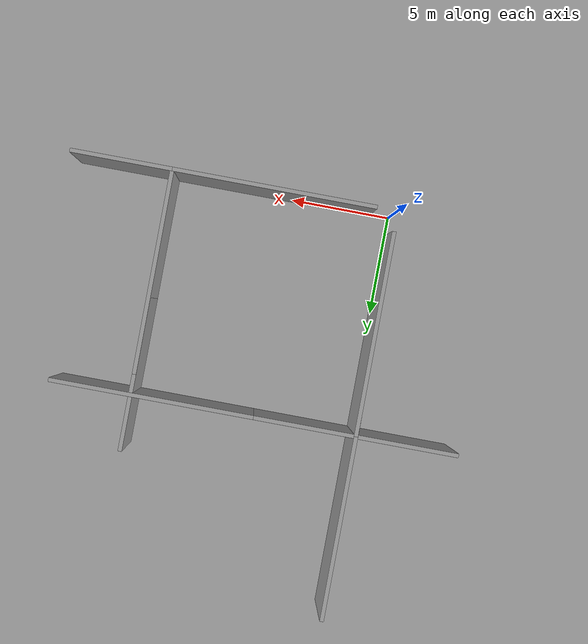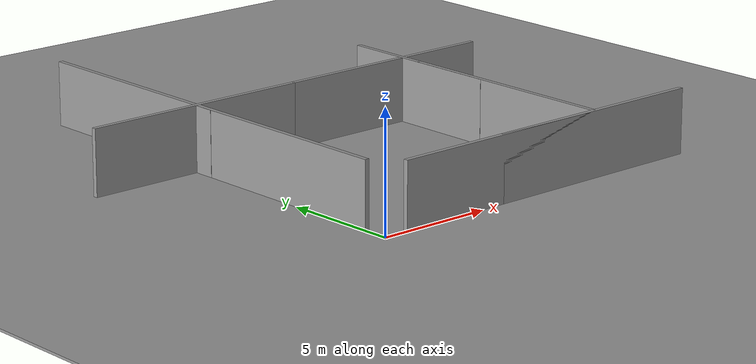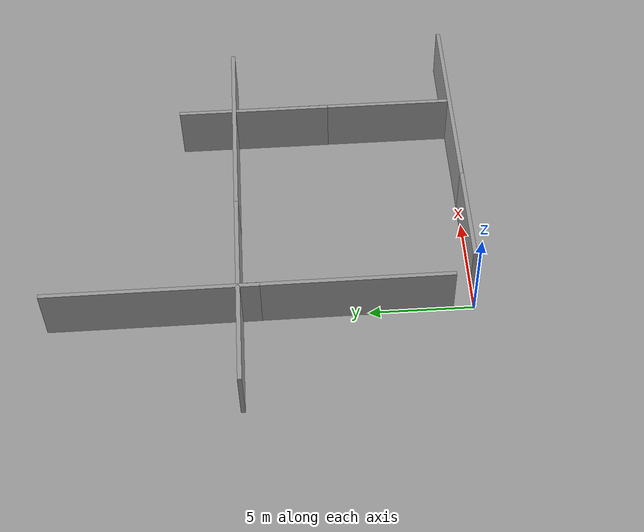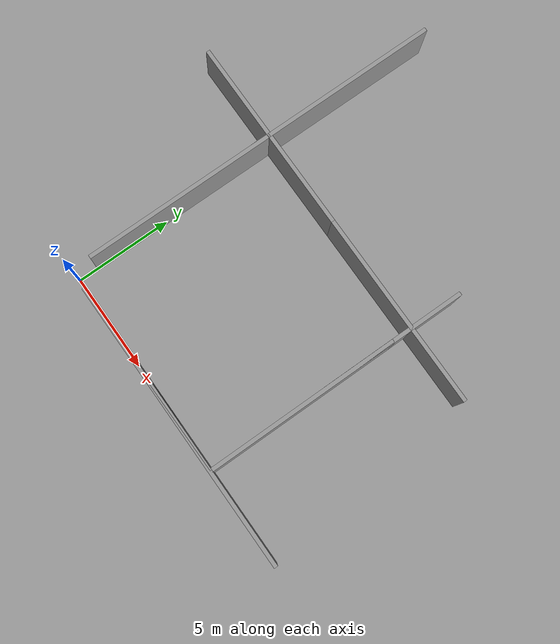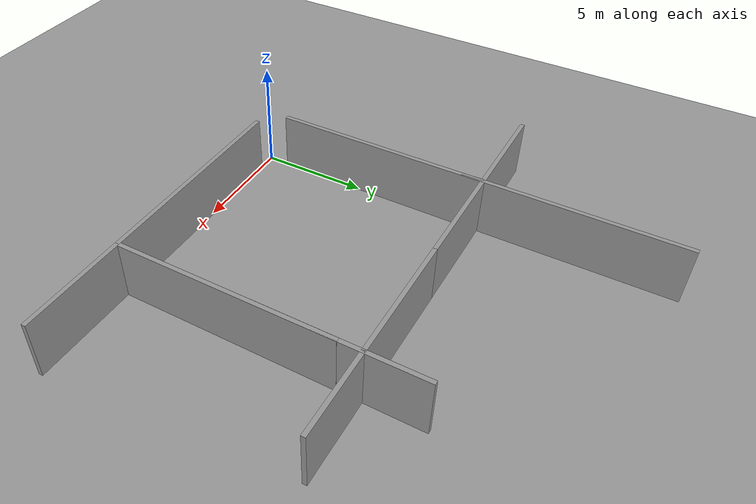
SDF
<sdf version="1.7">
 <world name="default">
  <plugin name="ros_interface_plugin" filename="librotors_gazebo_ros_interface_plugin.so"/>
  <light name="sun" type="directional">
   <pose>0 0 10 0 -0 0</pose>
   <diffuse>0.8 0.8 0.8 1</diffuse>
   <specular>0.2 0.2 0.2 1</specular>
   <attenuation>
    <range>1000</range>
    <constant>0.9</constant>
    <linear>0.01</linear>
    <quadratic>0.001</quadratic>
   </attenuation>
   <direction>-0.5 0.1 -0.9</direction>
   <spot><inner_angle>0</inner_angle><outer_angle>0</outer_angle><falloff>0</falloff></spot>
  </light>
  <model name="ground_plane">
   <static>1</static>
   <link name="link">
    <collision name="collision">
     <geometry><plane><normal>0 0 1</normal><size>100 100</size></plane></geometry>
     <surface><friction><ode><mu>100</mu><mu2>50</mu2></ode></friction></surface>
    </collision>
    <visual name="visual">
     <cast_shadows>0</cast_shadows>
     <geometry><plane><normal>0 0 1</normal><size>100 100</size></plane></geometry>
     <material>
      <script><uri>file://media/materials/scripts/gazebo.material</uri><name>Gazebo/Grey</name></script>
     </material>
    </visual>
   </link>
  </model>
  <gravity>0 0 -9.8</gravity>
  <magnetic_field>6e-06 2.3e-05 -4.2e-05</magnetic_field>
  <atmosphere type="adiabatic"/>
  <physics name="default_physics" default="0" type="ode">
   <max_step_size>0.01</max_step_size>
   <real_time_factor>1</real_time_factor>
   <real_time_update_rate>100</real_time_update_rate>
  </physics>
  <scene><ambient>0.4 0.4 0.4 1</ambient><background>0.7 0.7 0.7 1</background><shadows>1</shadows></scene>
  <audio><device>default</device></audio>
  <spherical_coordinates>
   <surface_model>EARTH_WGS84</surface_model>
   <latitude_deg>0</latitude_deg>
   <longitude_deg>0</longitude_deg>
   <elevation>0</elevation>
   <heading_deg>0</heading_deg>
  </spherical_coordinates>
  <model name="grey_wall_10">
   <link name="link">
    <pose>0 0 1.4 0 -0 0</pose>
    <inertial>
     <mass>1</mass>
     <inertia><ixx>1</ixx><ixy>0</ixy><ixz>0</ixz><iyy>1</iyy><iyz>0</iyz><izz>1</izz></inertia>
    </inertial>
    <visual name="visual">
     <cast_shadows>0</cast_shadows>
     <geometry><box><size>10 0.2 2.8</size></box></geometry>
     <material>
      <script>
       <uri>model://grey_wall/materials/scripts</uri>
       <uri>model://grey_wall/materials/textures</uri>
       <name>vrc/grey_wall</name>
      </script>
      <shader type="vertex"><normal_map>__default__</normal_map></shader>
      <ambient>1 1 1 1</ambient>
      <diffuse>1 1 1 1</diffuse>
      <specular>0 0 0 1</specular>
      <emissive>0 0 0 1</emissive>
     </material>
    </visual>
    <collision name="collision">
     <geometry><box><size>10 0.2 2.8</size></box></geometry>
     <surface>
      <friction>
       <ode><mu>1</mu><mu2>1</mu2><fdir1>0 0 0</fdir1><slip1>0</slip1><slip2>0</slip2></ode>
       <torsional>
        <coefficient>1</coefficient>
        <patch_radius>0</patch_radius>
        <surface_radius>0</surface_radius>
        <use_patch_radius>1</use_patch_radius>
        <ode><slip>0</slip></ode>
       </torsional>
      </friction>
      <bounce><restitution_coefficient>0</restitution_coefficient><threshold>1e+06</threshold></bounce>
      <contact>
       <collide_without_contact>0</collide_without_contact>
       <collide_without_contact_bitmask>1</collide_without_contact_bitmask>
       <collide_bitmask>1</collide_bitmask>
       <ode>
        <soft_cfm>0</soft_cfm>
        <soft_erp>0.2</soft_erp>
        <kp>1e+13</kp>
        <kd>1</kd>
        <max_vel>0.01</max_vel>
        <min_depth>0</min_depth>
       </ode>
       <bullet>
        <split_impulse>1</split_impulse>
        <split_impulse_penetration_threshold>-0.01</split_impulse_penetration_threshold>
        <soft_cfm>0</soft_cfm>
        <soft_erp>0.2</soft_erp>
        <kp>1e+13</kp>
        <kd>1</kd>
       </bullet>
      </contact>
     </surface>
    </collision>
   </link>
   <static>1</static>
   <pose>6 0 0 0 -0 0</pose>
  </model>
  <model name="grey_wall_10_0">
   <link name="link">
    <pose>0 0 1.4 0 -0 0</pose>
    <inertial>
     <mass>1</mass>
     <inertia><ixx>1</ixx><ixy>0</ixy><ixz>0</ixz><iyy>1</iyy><iyz>0</iyz><izz>1</izz></inertia>
    </inertial>
    <visual name="visual">
     <cast_shadows>0</cast_shadows>
     <geometry><box><size>10 0.2 2.8</size></box></geometry>
     <material>
      <script>
       <uri>model://grey_wall/materials/scripts</uri>
       <uri>model://grey_wall/materials/textures</uri>
       <name>vrc/grey_wall</name>
      </script>
      <shader type="vertex"><normal_map>__default__</normal_map></shader>
      <ambient>1 1 1 1</ambient>
      <diffuse>1 1 1 1</diffuse>
      <specular>0 0 0 1</specular>
      <emissive>0 0 0 1</emissive>
     </material>
    </visual>
    <collision name="collision">
     <geometry><box><size>10 0.2 2.8</size></box></geometry>
     <surface>
      <friction>
       <ode><mu>1</mu><mu2>1</mu2><fdir1>0 0 0</fdir1><slip1>0</slip1><slip2>0</slip2></ode>
       <torsional>
        <coefficient>1</coefficient>
        <patch_radius>0</patch_radius>
        <surface_radius>0</surface_radius>
        <use_patch_radius>1</use_patch_radius>
        <ode><slip>0</slip></ode>
       </torsional>
      </friction>
      <bounce><restitution_coefficient>0</restitution_coefficient><threshold>1e+06</threshold></bounce>
      <contact>
       <collide_without_contact>0</collide_without_contact>
       <collide_without_contact_bitmask>1</collide_without_contact_bitmask>
       <collide_bitmask>1</collide_bitmask>
       <ode>
        <soft_cfm>0</soft_cfm>
        <soft_erp>0.2</soft_erp>
        <kp>1e+13</kp>
        <kd>1</kd>
        <max_vel>0.01</max_vel>
        <min_depth>0</min_depth>
       </ode>
       <bullet>
        <split_impulse>1</split_impulse>
        <split_impulse_penetration_threshold>-0.01</split_impulse_penetration_threshold>
        <soft_cfm>0</soft_cfm>
        <soft_erp>0.2</soft_erp>
        <kp>1e+13</kp>
        <kd>1</kd>
       </bullet>
      </contact>
     </surface>
    </collision>
   </link>
   <static>1</static>
   <pose>10 11 0 0 -0 0</pose>
  </model>
  <model name="grey_wall_10_1">
   <link name="link">
    <pose>0 0 1.4 0 -0 0</pose>
    <inertial>
     <mass>1</mass>
     <inertia><ixx>1</ixx><ixy>0</ixy><ixz>0</ixz><iyy>1</iyy><iyz>0</iyz><izz>1</izz></inertia>
    </inertial>
    <visual name="visual">
     <cast_shadows>0</cast_shadows>
     <geometry><box><size>10 0.2 2.8</size></box></geometry>
     <material>
      <script>
       <uri>model://grey_wall/materials/scripts</uri>
       <uri>model://grey_wall/materials/textures</uri>
       <name>vrc/grey_wall</name>
      </script>
      <shader type="vertex"><normal_map>__default__</normal_map></shader>
      <ambient>1 1 1 1</ambient>
      <diffuse>1 1 1 1</diffuse>
      <specular>0 0 0 1</specular>
      <emissive>0 0 0 1</emissive>
     </material>
    </visual>
    <collision name="collision">
     <geometry><box><size>10 0.2 2.8</size></box></geometry>
     <surface>
      <friction>
       <ode><mu>1</mu><mu2>1</mu2><fdir1>0 0 0</fdir1><slip1>0</slip1><slip2>0</slip2></ode>
       <torsional>
        <coefficient>1</coefficient>
        <patch_radius>0</patch_radius>
        <surface_radius>0</surface_radius>
        <use_patch_radius>1</use_patch_radius>
        <ode><slip>0</slip></ode>
       </torsional>
      </friction>
      <bounce><restitution_coefficient>0</restitution_coefficient><threshold>1e+06</threshold></bounce>
      <contact>
       <collide_without_contact>0</collide_without_contact>
       <collide_without_contact_bitmask>1</collide_without_contact_bitmask>
       <collide_bitmask>1</collide_bitmask>
       <ode>
        <soft_cfm>0</soft_cfm>
        <soft_erp>0.2</soft_erp>
        <kp>1e+13</kp>
        <kd>1</kd>
        <max_vel>0.01</max_vel>
        <min_depth>0</min_depth>
       </ode>
       <bullet>
        <split_impulse>1</split_impulse>
        <split_impulse_penetration_threshold>-0.01</split_impulse_penetration_threshold>
        <soft_cfm>0</soft_cfm>
        <soft_erp>0.2</soft_erp>
        <kp>1e+13</kp>
        <kd>1</kd>
       </bullet>
      </contact>
     </surface>
    </collision>
   </link>
   <static>1</static>
   <pose>11 0 0 0 -0 0</pose>
  </model>
  <model name="grey_wall_10_2">
   <link name="link">
    <pose>0 0 1.4 0 -0 0</pose>
    <inertial>
     <mass>1</mass>
     <inertia><ixx>1</ixx><ixy>0</ixy><ixz>0</ixz><iyy>1</iyy><iyz>0</iyz><izz>1</izz></inertia>
    </inertial>
    <visual name="visual">
     <cast_shadows>0</cast_shadows>
     <geometry><box><size>10 0.2 2.8</size></box></geometry>
     <material>
      <script>
       <uri>model://grey_wall/materials/scripts</uri>
       <uri>model://grey_wall/materials/textures</uri>
       <name>vrc/grey_wall</name>
      </script>
      <shader type="vertex"><normal_map>__default__</normal_map></shader>
      <ambient>1 1 1 1</ambient>
      <diffuse>1 1 1 1</diffuse>
      <specular>0 0 0 1</specular>
      <emissive>0 0 0 1</emissive>
     </material>
    </visual>
    <collision name="collision">
     <geometry><box><size>10 0.2 2.8</size></box></geometry>
     <surface>
      <friction>
       <ode><mu>1</mu><mu2>1</mu2><fdir1>0 0 0</fdir1><slip1>0</slip1><slip2>0</slip2></ode>
       <torsional>
        <coefficient>1</coefficient>
        <patch_radius>0</patch_radius>
        <surface_radius>0</surface_radius>
        <use_patch_radius>1</use_patch_radius>
        <ode><slip>0</slip></ode>
       </torsional>
      </friction>
      <bounce><restitution_coefficient>0</restitution_coefficient><threshold>1e+06</threshold></bounce>
      <contact>
       <collide_without_contact>0</collide_without_contact>
       <collide_without_contact_bitmask>1</collide_without_contact_bitmask>
       <collide_bitmask>1</collide_bitmask>
       <ode>
        <soft_cfm>0</soft_cfm>
        <soft_erp>0.2</soft_erp>
        <kp>1e+13</kp>
        <kd>1</kd>
        <max_vel>0.01</max_vel>
        <min_depth>0</min_depth>
       </ode>
       <bullet>
        <split_impulse>1</split_impulse>
        <split_impulse_penetration_threshold>-0.01</split_impulse_penetration_threshold>
        <soft_cfm>0</soft_cfm>
        <soft_erp>0.2</soft_erp>
        <kp>1e+13</kp>
        <kd>1</kd>
       </bullet>
      </contact>
     </surface>
    </collision>
   </link>
   <static>1</static>
   <pose>0 6 0 0 -0 1.57</pose>
  </model>
  <model name="grey_wall_10_3">
   <link name="link">
    <pose>0 0 1.4 0 -0 0</pose>
    <inertial>
     <mass>1</mass>
     <inertia><ixx>1</ixx><ixy>0</ixy><ixz>0</ixz><iyy>1</iyy><iyz>0</iyz><izz>1</izz></inertia>
    </inertial>
    <visual name="visual">
     <cast_shadows>0</cast_shadows>
     <geometry><box><size>10 0.2 2.8</size></box></geometry>
     <material>
      <script>
       <uri>model://grey_wall/materials/scripts</uri>
       <uri>model://grey_wall/materials/textures</uri>
       <name>vrc/grey_wall</name>
      </script>
      <shader type="vertex"><normal_map>__default__</normal_map></shader>
      <ambient>1 1 1 1</ambient>
      <diffuse>1 1 1 1</diffuse>
      <specular>0 0 0 1</specular>
      <emissive>0 0 0 1</emissive>
     </material>
    </visual>
    <collision name="collision">
     <geometry><box><size>10 0.2 2.8</size></box></geometry>
     <surface>
      <friction>
       <ode><mu>1</mu><mu2>1</mu2><fdir1>0 0 0</fdir1><slip1>0</slip1><slip2>0</slip2></ode>
       <torsional>
        <coefficient>1</coefficient>
        <patch_radius>0</patch_radius>
        <surface_radius>0</surface_radius>
        <use_patch_radius>1</use_patch_radius>
        <ode><slip>0</slip></ode>
       </torsional>
      </friction>
      <bounce><restitution_coefficient>0</restitution_coefficient><threshold>1e+06</threshold></bounce>
      <contact>
       <collide_without_contact>0</collide_without_contact>
       <collide_without_contact_bitmask>1</collide_without_contact_bitmask>
       <collide_bitmask>1</collide_bitmask>
       <ode>
        <soft_cfm>0</soft_cfm>
        <soft_erp>0.2</soft_erp>
        <kp>1e+13</kp>
        <kd>1</kd>
        <max_vel>0.01</max_vel>
        <min_depth>0</min_depth>
       </ode>
       <bullet>
        <split_impulse>1</split_impulse>
        <split_impulse_penetration_threshold>-0.01</split_impulse_penetration_threshold>
        <soft_cfm>0</soft_cfm>
        <soft_erp>0.2</soft_erp>
        <kp>1e+13</kp>
        <kd>1</kd>
       </bullet>
      </contact>
     </surface>
    </collision>
   </link>
   <static>1</static>
   <pose>11 5 0 0 -0 1.57</pose>
  </model>
  <model name="grey_wall_10_4">
   <link name="link">
    <pose>0 0 1.4 0 -0 0</pose>
    <inertial>
     <mass>1</mass>
     <inertia><ixx>1</ixx><ixy>0</ixy><ixz>0</ixz><iyy>1</iyy><iyz>0</iyz><izz>1</izz></inertia>
    </inertial>
    <visual name="visual">
     <cast_shadows>0</cast_shadows>
     <geometry><box><size>10 0.2 2.8</size></box></geometry>
     <material>
      <script>
       <uri>model://grey_wall/materials/scripts</uri>
       <uri>model://grey_wall/materials/textures</uri>
       <name>vrc/grey_wall</name>
      </script>
      <shader type="vertex"><normal_map>__default__</normal_map></shader>
      <ambient>1 1 1 1</ambient>
      <diffuse>1 1 1 1</diffuse>
      <specular>0 0 0 1</specular>
      <emissive>0 0 0 1</emissive>
     </material>
    </visual>
    <collision name="collision">
     <geometry><box><size>10 0.2 2.8</size></box></geometry>
     <surface>
      <friction>
       <ode><mu>1</mu><mu2>1</mu2><fdir1>0 0 0</fdir1><slip1>0</slip1><slip2>0</slip2></ode>
       <torsional>
        <coefficient>1</coefficient>
        <patch_radius>0</patch_radius>
        <surface_radius>0</surface_radius>
        <use_patch_radius>1</use_patch_radius>
        <ode><slip>0</slip></ode>
       </torsional>
      </friction>
      <bounce><restitution_coefficient>0</restitution_coefficient><threshold>1e+06</threshold></bounce>
      <contact>
       <collide_without_contact>0</collide_without_contact>
       <collide_without_contact_bitmask>1</collide_without_contact_bitmask>
       <collide_bitmask>1</collide_bitmask>
       <ode>
        <soft_cfm>0</soft_cfm>
        <soft_erp>0.2</soft_erp>
        <kp>1e+13</kp>
        <kd>1</kd>
        <max_vel>0.01</max_vel>
        <min_depth>0</min_depth>
       </ode>
       <bullet>
        <split_impulse>1</split_impulse>
        <split_impulse_penetration_threshold>-0.01</split_impulse_penetration_threshold>
        <soft_cfm>0</soft_cfm>
        <soft_erp>0.2</soft_erp>
        <kp>1e+13</kp>
        <kd>1</kd>
       </bullet>
      </contact>
     </surface>
    </collision>
   </link>
   <static>1</static>
   <pose>0 15 0 0 -0 1.57</pose>
  </model>
  <model name="grey_wall_10_6">
   <link name="link">
    <pose>0 0 1.4 0 -0 0</pose>
    <inertial>
     <mass>1</mass>
     <inertia><ixx>1</ixx><ixy>0</ixy><ixz>0</ixz><iyy>1</iyy><iyz>0</iyz><izz>1</izz></inertia>
    </inertial>
    <visual name="visual">
     <cast_shadows>0</cast_shadows>
     <geometry><box><size>10 0.2 2.8</size></box></geometry>
     <material>
      <script>
       <uri>model://grey_wall/materials/scripts</uri>
       <uri>model://grey_wall/materials/textures</uri>
       <name>vrc/grey_wall</name>
      </script>
      <shader type="vertex"><normal_map>__default__</normal_map></shader>
      <ambient>1 1 1 1</ambient>
      <diffuse>1 1 1 1</diffuse>
      <specular>0 0 0 1</specular>
      <emissive>0 0 0 1</emissive>
     </material>
    </visual>
    <collision name="collision">
     <geometry><box><size>10 0.2 2.8</size></box></geometry>
     <surface>
      <friction>
       <ode><mu>1</mu><mu2>1</mu2><fdir1>0 0 0</fdir1><slip1>0</slip1><slip2>0</slip2></ode>
       <torsional>
        <coefficient>1</coefficient>
        <patch_radius>0</patch_radius>
        <surface_radius>0</surface_radius>
        <use_patch_radius>1</use_patch_radius>
        <ode><slip>0</slip></ode>
       </torsional>
      </friction>
      <bounce><restitution_coefficient>0</restitution_coefficient><threshold>1e+06</threshold></bounce>
      <contact>
       <collide_without_contact>0</collide_without_contact>
       <collide_without_contact_bitmask>1</collide_without_contact_bitmask>
       <collide_bitmask>1</collide_bitmask>
       <ode>
        <soft_cfm>0</soft_cfm>
        <soft_erp>0.2</soft_erp>
        <kp>1e+13</kp>
        <kd>1</kd>
        <max_vel>0.01</max_vel>
        <min_depth>0</min_depth>
       </ode>
       <bullet>
        <split_impulse>1</split_impulse>
        <split_impulse_penetration_threshold>-0.01</split_impulse_penetration_threshold>
        <soft_cfm>0</soft_cfm>
        <soft_erp>0.2</soft_erp>
        <kp>1e+13</kp>
        <kd>1</kd>
       </bullet>
      </contact>
     </surface>
    </collision>
   </link>
   <static>1</static>
   <pose>0 11 0 0 -0 0</pose>
  </model>
  <model name="wood_cube_2_5cm">
   <link name="link">
    <pose>0 0 0.0125 0 -0 0</pose>
    <inertial>
     <mass>0.0073</mass>
     <inertia>
      <ixx>7.60417e-07</ixx>
      <ixy>0</ixy>
      <ixz>0</ixz>
      <iyy>7.60417e-07</iyy>
      <iyz>0</iyz>
      <izz>7.60417e-07</izz>
     </inertia>
    </inertial>
    <collision name="collision">
     <geometry><box><size>0.025 0.025 0.025</size></box></geometry>
     <surface>
      <contact>
       <poissons_ratio>0.347</poissons_ratio>
       <elastic_modulus>8.8e+09</elastic_modulus>
       <ode><kp>100000</kp><kd>100</kd><max_vel>100</max_vel><min_depth>0.001</min_depth></ode>
      </contact>
      <friction>
       <torsional>
        <coefficient>1</coefficient>
        <use_patch_radius>0</use_patch_radius>
        <surface_radius>0.01</surface_radius>
       </torsional>
      </friction>
     </surface>
    </collision>
    <visual name="visual">
     <geometry><box><size>0.025 0.025 0.025</size></box></geometry>
     <material>
      <script><uri>file://media/materials/scripts/gazebo.material</uri><name>Gazebo/Wood</name></script>
     </material>
    </visual>
   </link>
   <pose>9.08295 -8.46454 -0.000596 -1e-06 0.016929 0</pose>
  </model>
  <model name="grey_wall">
   <static>1</static>
   <link name="link">
    <pose>0 0 1.4 0 -0 0</pose>
    <collision name="collision"><geometry><box><size>7.5 0.2 2.8</size></box></geometry></collision>
    <visual name="visual">
     <cast_shadows>0</cast_shadows>
     <geometry><box><size>7.5 0.2 2.8</size></box></geometry>
     <material>
      <script>
       <uri>model://grey_wall/materials/scripts</uri>
       <uri>model://grey_wall/materials/textures</uri>
       <name>vrc/grey_wall</name>
      </script>
     </material>
    </visual>
   </link>
   <pose>11 10 0 0 -0 1.57</pose>
  </model>
  <model name="ground_plane_0">
   <static>1</static>
   <link name="link">
    <collision name="collision">
     <geometry><plane><normal>0 0 1</normal><size>100 100</size></plane></geometry>
     <surface>
      <contact><collide_bitmask>65535</collide_bitmask></contact>
      <friction><ode><mu>100</mu><mu2>50</mu2></ode></friction>
     </surface>
    </collision>
    <visual name="visual">
     <cast_shadows>0</cast_shadows>
     <geometry><plane><normal>0 0 1</normal><size>100 100</size></plane></geometry>
     <material>
      <script><uri>file://media/materials/scripts/gazebo.material</uri><name>Gazebo/Grey</name></script>
     </material>
    </visual>
   </link>
   <pose>5.30691 -0.598783 0 0 -0 0</pose>
  </model>
 </world>
</sdf>
